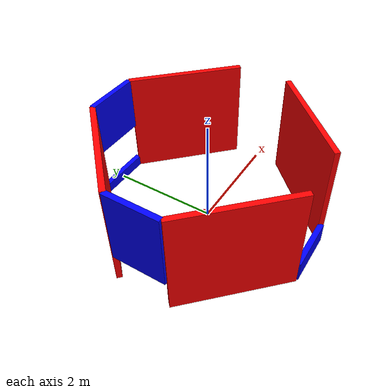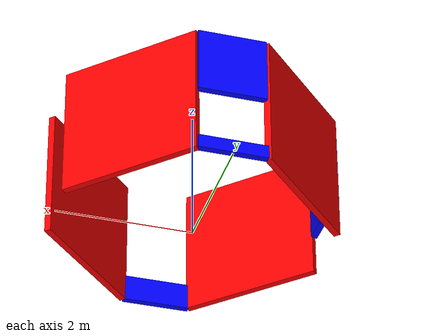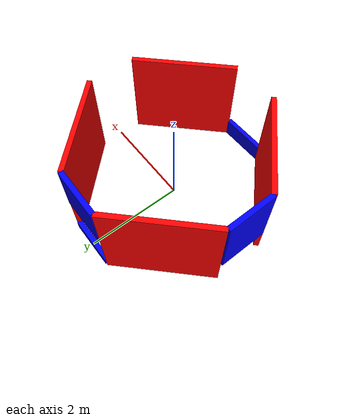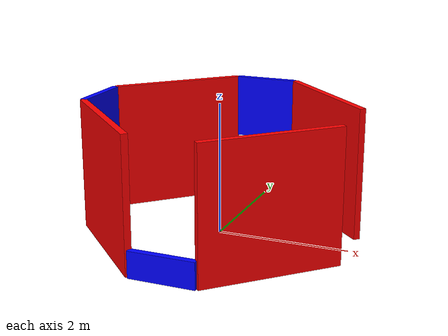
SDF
<sdf version='1.9'>
  <model name='scene'>
    <link name='base_link'>
      <inertial>
        <pose>-0.25 0.25 0.8874999999999998 0 0 0</pose>
        <mass>80</mass>
        <inertia>
          <ixx>218.72690166666669</ixx>
          <ixy>-4.9999999999999982</ixy>
          <ixz>8.25</ixz>
          <iyy>140.3769016666667</iyy>
          <iyz>-10.25</iyz>
          <izz>293.39546999999999</izz>
        </inertia>
      </inertial>
      <collision name='base_link_fixed_joint_lump__wall_nb_collision'>
        <pose>0 2 0.1 0 0 0</pose>
        <geometry>
          <box>
            <size>1 0.1 0.2</size>
          </box>
        </geometry>
      </collision>
      <collision name='base_link_fixed_joint_lump__wall_ne_collision_1'>
        <pose>1.25 1.25 1 0 0 -0.7853981633974484</pose>
        <geometry>
          <box>
            <size>2.121 0.1 2</size>
          </box>
        </geometry>
      </collision>
      <collision name='base_link_fixed_joint_lump__wall_nt_collision_2'>
        <pose>0 2 1.5 0 0 0</pose>
        <geometry>
          <box>
            <size>1 0.1 1</size>
          </box>
        </geometry>
      </collision>
      <collision name='base_link_fixed_joint_lump__wall_nw_collision_3'>
        <pose>-1.25 1.25 1 0 0 0.7853981633974484</pose>
        <geometry>
          <box>
            <size>2.121 0.1 2</size>
          </box>
        </geometry>
      </collision>
      <collision name='base_link_fixed_joint_lump__wall_s_collision_4'>
        <pose>0 -2 0.2 0 0 0</pose>
        <geometry>
          <box>
            <size>1 0.1 0.4</size>
          </box>
        </geometry>
      </collision>
      <collision name='base_link_fixed_joint_lump__wall_se_collision_5'>
        <pose>1.25 -1.25 1 0 0 0.7853981633974484</pose>
        <geometry>
          <box>
            <size>2.121 0.1 2</size>
          </box>
        </geometry>
      </collision>
      <collision name='base_link_fixed_joint_lump__wall_sw_collision_6'>
        <pose>-1.25 -1.25 1 0 0 -0.7853981633974484</pose>
        <geometry>
          <box>
            <size>2.121 0.1 2</size>
          </box>
        </geometry>
      </collision>
      <collision name='base_link_fixed_joint_lump__wall_w_collision_7'>
        <pose>-2 0 1.3 0 0 1.570796326794896</pose>
        <geometry>
          <box>
            <size>1 0.1 1.4</size>
          </box>
        </geometry>
      </collision>
      <visual name='base_link_fixed_joint_lump__wall_nb_visual'>
        <pose>0 2 0.1 0 0 0</pose>
        <geometry>
          <box>
            <size>1 0.1 0.2</size>
          </box>
        </geometry>
        <material>
          <diffuse>0 0 1 1</diffuse>
          <ambient>0 0 1 1</ambient>
        </material>
      </visual>
      <visual name='base_link_fixed_joint_lump__wall_ne_visual_1'>
        <pose>1.25 1.25 1 0 0 -0.7853981633974484</pose>
        <geometry>
          <box>
            <size>2.121 0.1 2</size>
          </box>
        </geometry>
        <material>
          <diffuse>1 0 0 1</diffuse>
          <ambient>1 0 0 1</ambient>
        </material>
      </visual>
      <visual name='base_link_fixed_joint_lump__wall_nt_visual_2'>
        <pose>0 2 1.5 0 0 0</pose>
        <geometry>
          <box>
            <size>1 0.1 1</size>
          </box>
        </geometry>
        <material>
          <diffuse>0 0 1 1</diffuse>
          <ambient>0 0 1 1</ambient>
        </material>
      </visual>
      <visual name='base_link_fixed_joint_lump__wall_nw_visual_3'>
        <pose>-1.25 1.25 1 0 0 0.7853981633974484</pose>
        <geometry>
          <box>
            <size>2.121 0.1 2</size>
          </box>
        </geometry>
        <material>
          <diffuse>1 0 0 1</diffuse>
          <ambient>1 0 0 1</ambient>
        </material>
      </visual>
      <visual name='base_link_fixed_joint_lump__wall_s_visual_4'>
        <pose>0 -2 0.2 0 0 0</pose>
        <geometry>
          <box>
            <size>1 0.1 0.4</size>
          </box>
        </geometry>
        <material>
          <diffuse>0 0 1 1</diffuse>
          <ambient>0 0 1 1</ambient>
        </material>
      </visual>
      <visual name='base_link_fixed_joint_lump__wall_se_visual_5'>
        <pose>1.25 -1.25 1 0 0 0.7853981633974484</pose>
        <geometry>
          <box>
            <size>2.121 0.1 2</size>
          </box>
        </geometry>
        <material>
          <diffuse>1 0 0 1</diffuse>
          <ambient>1 0 0 1</ambient>
        </material>
      </visual>
      <visual name='base_link_fixed_joint_lump__wall_sw_visual_6'>
        <pose>-1.25 -1.25 1 0 0 -0.7853981633974484</pose>
        <geometry>
          <box>
            <size>2.121 0.1 2</size>
          </box>
        </geometry>
        <material>
          <diffuse>1 0 0 1</diffuse>
          <ambient>1 0 0 1</ambient>
        </material>
      </visual>
      <visual name='base_link_fixed_joint_lump__wall_w_visual_7'>
        <pose>-2 0 1.3 0 0 1.570796326794896</pose>
        <geometry>
          <box>
            <size>1 0.1 1.4</size>
          </box>
        </geometry>
        <material>
          <diffuse>0 0 1 1</diffuse>
          <ambient>0 0 1 1</ambient>
        </material>
      </visual>
    </link>
    <frame name='wall_joint_nb' attached_to='base_link'>
      <pose>0 2 0.1 0 -0 0</pose>
    </frame>
    <frame name='wall_nb' attached_to='wall_joint_nb'/>
    <frame name='wall_joint_ne' attached_to='base_link'>
      <pose>1.25 1.25 1 0 0 -0.785398</pose>
    </frame>
    <frame name='wall_ne' attached_to='wall_joint_ne'/>
    <frame name='wall_joint_nt' attached_to='base_link'>
      <pose>0 2 1.5 0 -0 0</pose>
    </frame>
    <frame name='wall_nt' attached_to='wall_joint_nt'/>
    <frame name='wall_joint_nw' attached_to='base_link'>
      <pose>-1.25 1.25 1 0 -0 0.785398</pose>
    </frame>
    <frame name='wall_nw' attached_to='wall_joint_nw'/>
    <frame name='wall_joint_s' attached_to='base_link'>
      <pose>0 -2 0.2 0 -0 0</pose>
    </frame>
    <frame name='wall_s' attached_to='wall_joint_s'/>
    <frame name='wall_joint_se' attached_to='base_link'>
      <pose>1.25 -1.25 1 0 -0 0.785398</pose>
    </frame>
    <frame name='wall_se' attached_to='wall_joint_se'/>
    <frame name='wall_joint_sw' attached_to='base_link'>
      <pose>-1.25 -1.25 1 0 0 -0.785398</pose>
    </frame>
    <frame name='wall_sw' attached_to='wall_joint_sw'/>
    <frame name='wall_joint_w' attached_to='base_link'>
      <pose>-2 0 1.3 0 -0 1.5708</pose>
    </frame>
    <frame name='wall_w' attached_to='wall_joint_w'/>
  </model>
</sdf>
